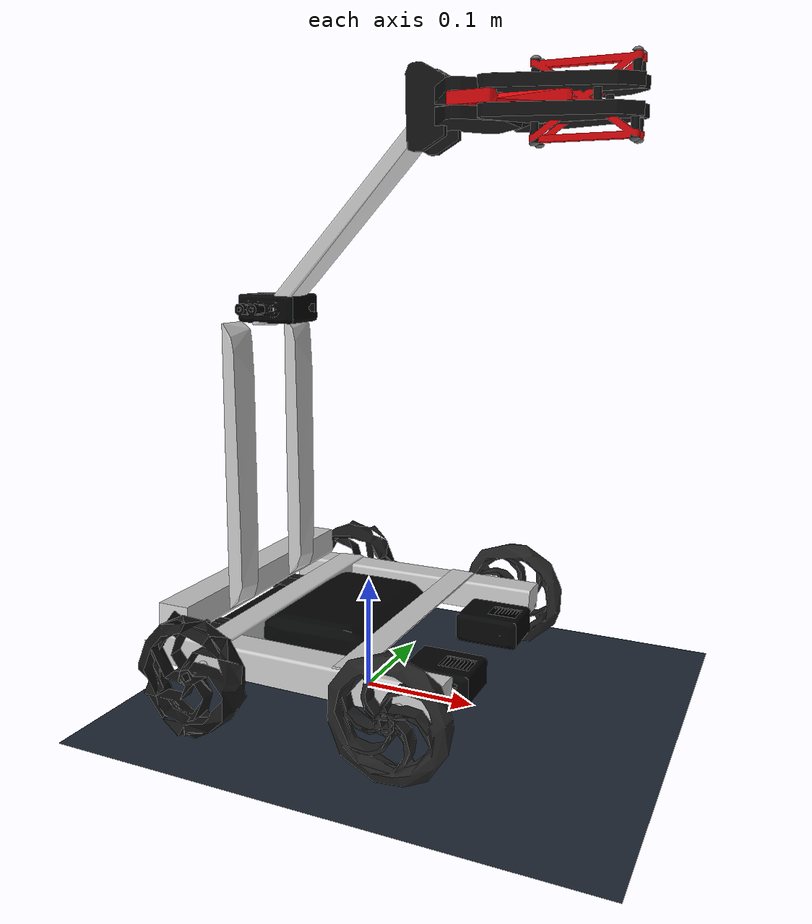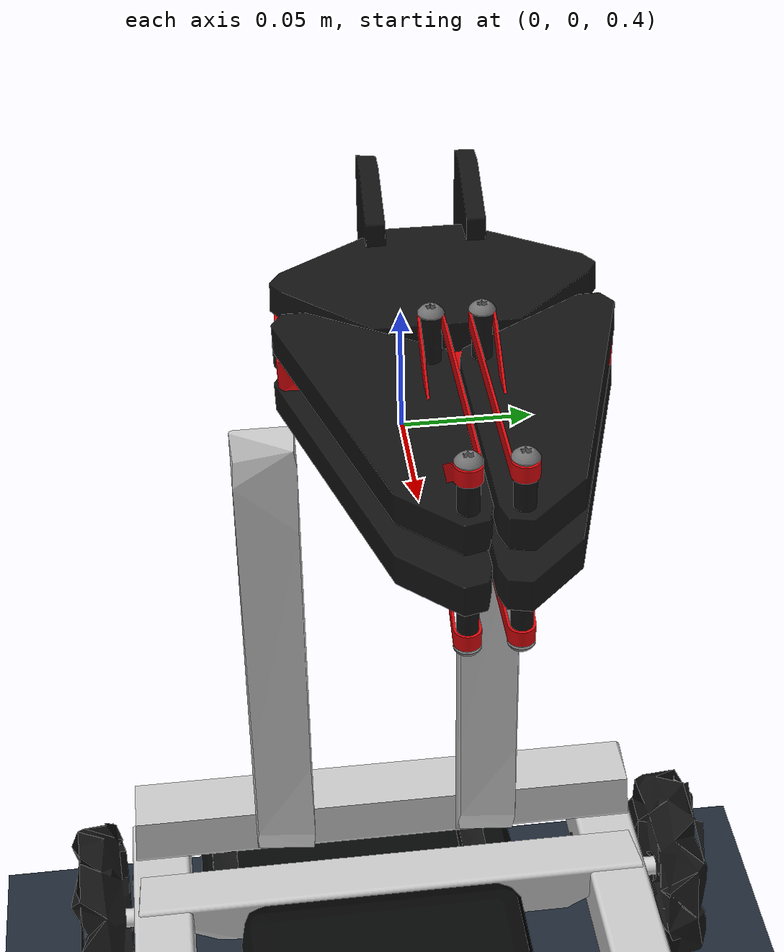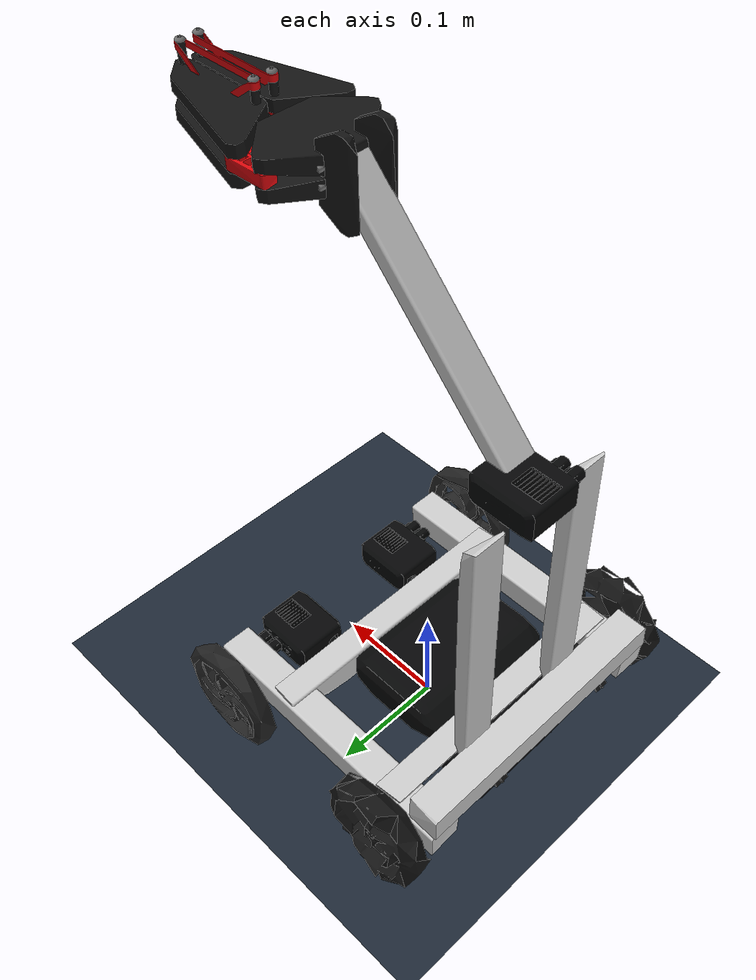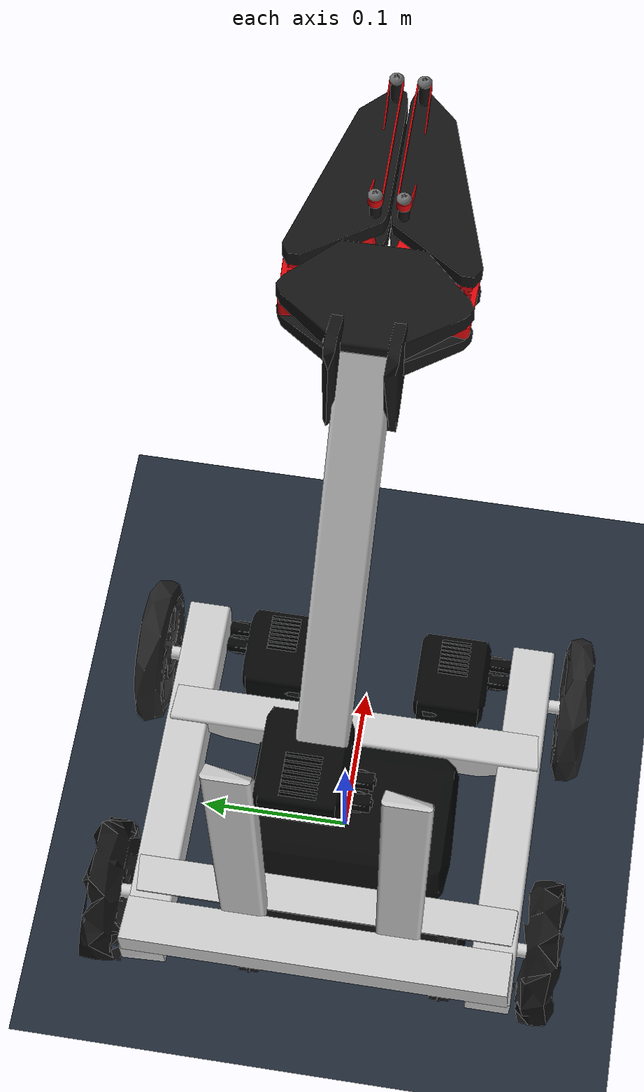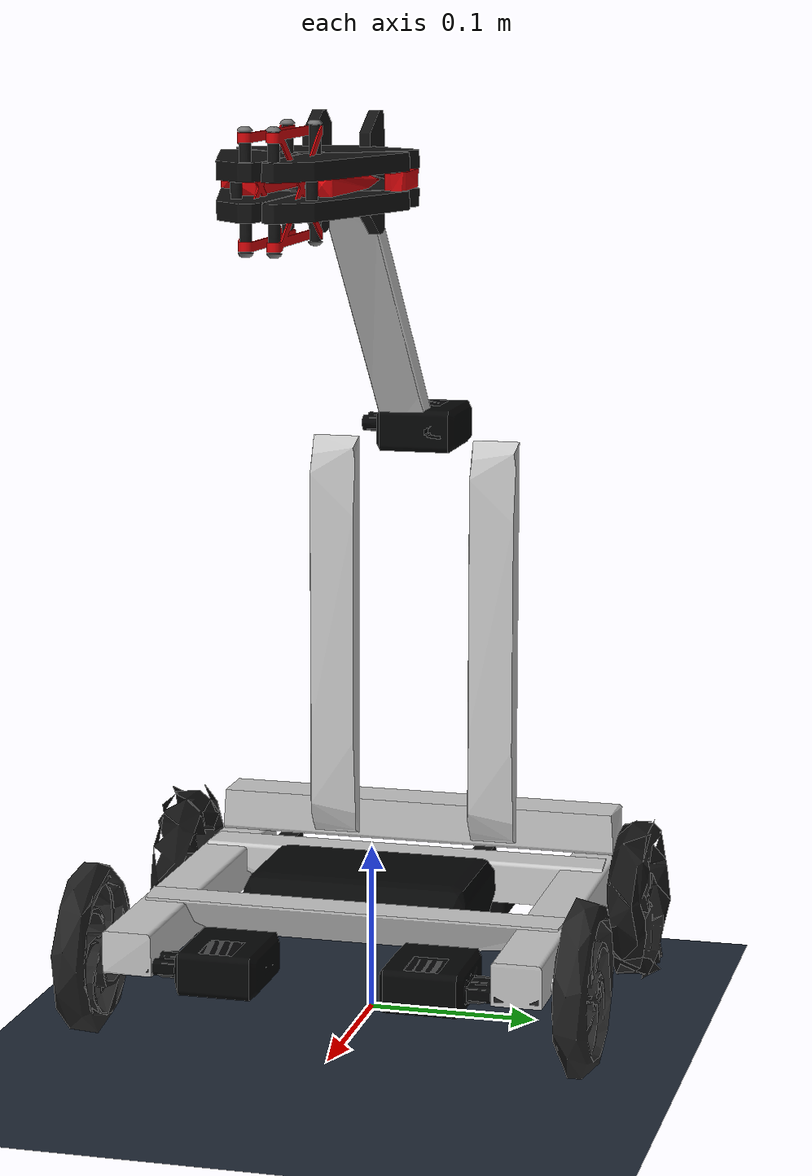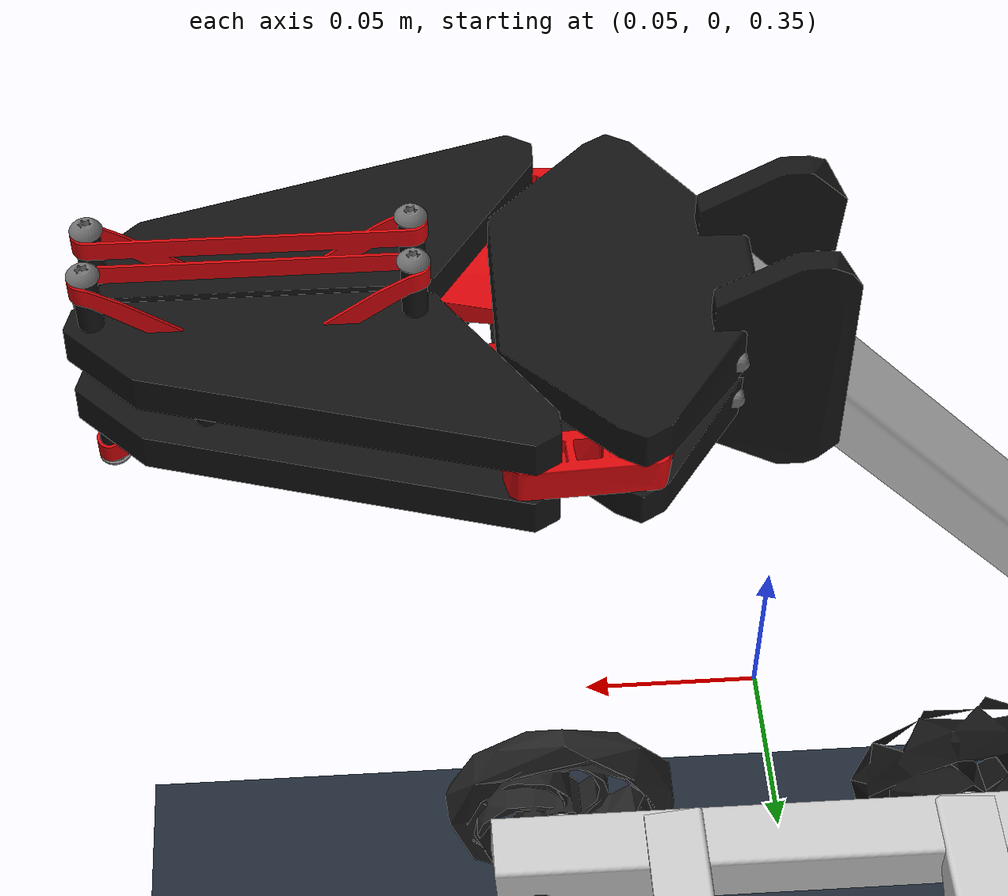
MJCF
<mujoco model="static_concept_NOT_physics_ready"><compiler angle="radian" autolimits="true" /><option gravity="0 0 -9.81" timestep=".002" integrator="implicitfast" iterations="80" /><visual><global offwidth="1200" offheight="900" /><headlight ambient=".4 .4 .4" diffuse=".65 .65 .65" /></visual><asset><mesh name="concept_p00002" file="/Users/joshuamichealscarano/Documents/AI-Vex-Project-1:5:26/data/cad_assets/clawbot/parts/p00002_lod.obj" scale=".001 .001 .001" inertia="shell" /><mesh name="concept_p00003" file="/Users/joshuamichealscarano/Documents/AI-Vex-Project-1:5:26/data/cad_assets/clawbot/parts/p00003_lod.obj" scale=".001 .001 .001" inertia="shell" /><mesh name="concept_p00004" file="/Users/joshuamichealscarano/Documents/AI-Vex-Project-1:5:26/data/cad_assets/clawbot/parts/p00004_lod.obj" scale=".001 .001 .001" inertia="shell" /><mesh name="concept_p00005" file="/Users/joshuamichealscarano/Documents/AI-Vex-Project-1:5:26/data/cad_assets/clawbot/parts/p00005_lod.obj" scale=".001 .001 .001" inertia="shell" /><mesh name="concept_p00006" file="/Users/joshuamichealscarano/Documents/AI-Vex-Project-1:5:26/data/cad_assets/clawbot/parts/p00006_lod.obj" scale=".001 .001 .001" inertia="shell" /><mesh name="concept_p00007" file="/Users/joshuamichealscarano/Documents/AI-Vex-Project-1:5:26/data/cad_assets/clawbot/parts/p00007_lod.obj" scale=".001 .001 .001" inertia="shell" /><mesh name="concept_p00008" file="/Users/joshuamichealscarano/Documents/AI-Vex-Project-1:5:26/data/cad_assets/clawbot/parts/p00008_lod.obj" scale=".001 .001 .001" inertia="shell" /><mesh name="concept_p00009" file="/Users/joshuamichealscarano/Documents/AI-Vex-Project-1:5:26/data/cad_assets/clawbot/parts/p00009_lod.obj" scale=".001 .001 .001" inertia="shell" /><mesh name="concept_p00010" file="/Users/joshuamichealscarano/Documents/AI-Vex-Project-1:5:26/data/cad_assets/clawbot/parts/p00010_lod.obj" scale=".001 .001 .001" inertia="shell" /><mesh name="concept_p00011" file="/Users/joshuamichealscarano/Documents/AI-Vex-Project-1:5:26/data/cad_assets/clawbot/parts/p00011_lod.obj" scale=".001 .001 .001" inertia="shell" /><mesh name="concept_p00012" file="/Users/joshuamichealscarano/Documents/AI-Vex-Project-1:5:26/data/cad_assets/clawbot/parts/p00012_lod.obj" scale=".001 .001 .001" inertia="shell" /><mesh name="concept_p00019" file="/Users/joshuamichealscarano/Documents/AI-Vex-Project-1:5:26/data/cad_assets/clawbot/parts/p00019_lod.obj" scale=".001 .001 .001" inertia="shell" /><mesh name="concept_p00025" file="/Users/joshuamichealscarano/Documents/AI-Vex-Project-1:5:26/data/cad_assets/clawbot/parts/p00025_lod.obj" scale=".001 .001 .001" inertia="shell" /><mesh name="concept_p00026" file="/Users/joshuamichealscarano/Documents/AI-Vex-Project-1:5:26/data/cad_assets/clawbot/parts/p00026_lod.obj" scale=".001 .001 .001" inertia="shell" /><mesh name="concept_p00027" file="/Users/joshuamichealscarano/Documents/AI-Vex-Project-1:5:26/data/cad_assets/clawbot/parts/p00027_lod.obj" scale=".001 .001 .001" inertia="shell" /><mesh name="concept_p00028" file="/Users/joshuamichealscarano/Documents/AI-Vex-Project-1:5:26/data/cad_assets/clawbot/parts/p00028_lod.obj" scale=".001 .001 .001" inertia="shell" /><mesh name="concept_p00029" file="/Users/joshuamichealscarano/Documents/AI-Vex-Project-1:5:26/data/cad_assets/clawbot/parts/p00029_lod.obj" scale=".001 .001 .001" inertia="shell" /><mesh name="concept_p00030" file="/Users/joshuamichealscarano/Documents/AI-Vex-Project-1:5:26/data/cad_assets/clawbot/parts/p00030_lod.obj" scale=".001 .001 .001" inertia="shell" /><mesh name="concept_p00031" file="/Users/joshuamichealscarano/Documents/AI-Vex-Project-1:5:26/data/cad_assets/clawbot/parts/p00031_lod.obj" scale=".001 .001 .001" inertia="shell" /><mesh name="concept_p00032" file="/Users/joshuamichealscarano/Documents/AI-Vex-Project-1:5:26/data/cad_assets/clawbot/parts/p00032_lod.obj" scale=".001 .001 .001" inertia="shell" /><mesh name="concept_p00033" file="/Users/joshuamichealscarano/Documents/AI-Vex-Project-1:5:26/data/cad_assets/clawbot/parts/p00033_lod.obj" scale=".001 .001 .001" inertia="shell" /><mesh name="concept_p00034" file="/Users/joshuamichealscarano/Documents/AI-Vex-Project-1:5:26/data/cad_assets/clawbot/parts/p00034_lod.obj" scale=".001 .001 .001" inertia="shell" /><mesh name="concept_p00035" file="/Users/joshuamichealscarano/Documents/AI-Vex-Project-1:5:26/data/cad_assets/clawbot/parts/p00035_lod.obj" scale=".001 .001 .001" inertia="shell" /><mesh name="concept_p00036" file="/Users/joshuamichealscarano/Documents/AI-Vex-Project-1:5:26/data/cad_assets/clawbot/parts/p00036_lod.obj" scale=".001 .001 .001" inertia="shell" /><mesh name="concept_p00037" file="/Users/joshuamichealscarano/Documents/AI-Vex-Project-1:5:26/data/cad_assets/clawbot/parts/p00037_lod.obj" scale=".001 .001 .001" inertia="shell" /><mesh name="concept_p00038" file="/Users/joshuamichealscarano/Documents/AI-Vex-Project-1:5:26/data/cad_assets/clawbot/parts/p00038_lod.obj" scale=".001 .001 .001" inertia="shell" /><mesh name="concept_p00039" file="/Users/joshuamichealscarano/Documents/AI-Vex-Project-1:5:26/data/cad_assets/clawbot/parts/p00039_lod.obj" scale=".001 .001 .001" inertia="shell" /><mesh name="concept_p00040" file="/Users/joshuamichealscarano/Documents/AI-Vex-Project-1:5:26/data/cad_assets/clawbot/parts/p00040_lod.obj" scale=".001 .001 .001" inertia="shell" /><mesh name="concept_p00041" file="/Users/joshuamichealscarano/Documents/AI-Vex-Project-1:5:26/data/cad_assets/clawbot/parts/p00041_lod.obj" scale=".001 .001 .001" inertia="shell" /><mesh name="concept_p00042" file="/Users/joshuamichealscarano/Documents/AI-Vex-Project-1:5:26/data/cad_assets/clawbot/parts/p00042_lod.obj" scale=".001 .001 .001" inertia="shell" /><mesh name="concept_p00043" file="/Users/joshuamichealscarano/Documents/AI-Vex-Project-1:5:26/data/cad_assets/clawbot/parts/p00043_lod.obj" scale=".001 .001 .001" inertia="shell" /><mesh name="concept_p00044" file="/Users/joshuamichealscarano/Documents/AI-Vex-Project-1:5:26/data/cad_assets/clawbot/parts/p00044_lod.obj" scale=".001 .001 .001" inertia="shell" /><mesh name="concept_p00045" file="/Users/joshuamichealscarano/Documents/AI-Vex-Project-1:5:26/data/cad_assets/clawbot/parts/p00045_lod.obj" scale=".001 .001 .001" inertia="shell" /><mesh name="concept_p00046" file="/Users/joshuamichealscarano/Documents/AI-Vex-Project-1:5:26/data/cad_assets/clawbot/parts/p00046_lod.obj" scale=".001 .001 .001" inertia="shell" /><mesh name="concept_p00047" file="/Users/joshuamichealscarano/Documents/AI-Vex-Project-1:5:26/data/cad_assets/clawbot/parts/p00047_lod.obj" scale=".001 .001 .001" inertia="shell" /><mesh name="concept_p00048" file="/Users/joshuamichealscarano/Documents/AI-Vex-Project-1:5:26/data/cad_assets/clawbot/parts/p00048_lod.obj" scale=".001 .001 .001" inertia="shell" /><mesh name="concept_p00049" file="/Users/joshuamichealscarano/Documents/AI-Vex-Project-1:5:26/data/cad_assets/clawbot/parts/p00049_lod.obj" scale=".001 .001 .001" inertia="shell" /><mesh name="concept_p00050" file="/Users/joshuamichealscarano/Documents/AI-Vex-Project-1:5:26/data/cad_assets/clawbot/parts/p00050_lod.obj" scale=".001 .001 .001" inertia="shell" /><mesh name="concept_p00051" file="/Users/joshuamichealscarano/Documents/AI-Vex-Project-1:5:26/data/cad_assets/clawbot/parts/p00051_lod.obj" scale=".001 .001 .001" inertia="shell" /><mesh name="concept_p00052" file="/Users/joshuamichealscarano/Documents/AI-Vex-Project-1:5:26/data/cad_assets/clawbot/parts/p00052_lod.obj" scale=".001 .001 .001" inertia="shell" /><mesh name="concept_p00053" file="/Users/joshuamichealscarano/Documents/AI-Vex-Project-1:5:26/data/cad_assets/clawbot/parts/p00053_lod.obj" scale=".001 .001 .001" inertia="shell" /><mesh name="concept_p00054" file="/Users/joshuamichealscarano/Documents/AI-Vex-Project-1:5:26/data/cad_assets/clawbot/parts/p00054_lod.obj" scale=".001 .001 .001" inertia="shell" /><mesh name="concept_p00055" file="/Users/joshuamichealscarano/Documents/AI-Vex-Project-1:5:26/data/cad_assets/clawbot/parts/p00055_lod.obj" scale=".001 .001 .001" inertia="shell" /><mesh name="concept_p00056" file="/Users/joshuamichealscarano/Documents/AI-Vex-Project-1:5:26/data/cad_assets/clawbot/parts/p00056_lod.obj" scale=".001 .001 .001" inertia="shell" /><mesh name="concept_p00057" file="/Users/joshuamichealscarano/Documents/AI-Vex-Project-1:5:26/data/cad_assets/clawbot/parts/p00057_lod.obj" scale=".001 .001 .001" inertia="shell" /><mesh name="concept_p00058" file="/Users/joshuamichealscarano/Documents/AI-Vex-Project-1:5:26/data/cad_assets/clawbot/parts/p00058_lod.obj" scale=".001 .001 .001" inertia="shell" /><mesh name="concept_p00059" file="/Users/joshuamichealscarano/Documents/AI-Vex-Project-1:5:26/data/cad_assets/clawbot/parts/p00059_lod.obj" scale=".001 .001 .001" inertia="shell" /><mesh name="concept_p00060" file="/Users/joshuamichealscarano/Documents/AI-Vex-Project-1:5:26/data/cad_assets/clawbot/parts/p00060_lod.obj" scale=".001 .001 .001" inertia="shell" /><mesh name="concept_p00061" file="/Users/joshuamichealscarano/Documents/AI-Vex-Project-1:5:26/data/cad_assets/clawbot/parts/p00061_lod.obj" scale=".001 .001 .001" inertia="shell" /><mesh name="concept_p00062" file="/Users/joshuamichealscarano/Documents/AI-Vex-Project-1:5:26/data/cad_assets/clawbot/parts/p00062_lod.obj" scale=".001 .001 .001" inertia="shell" /><mesh name="concept_p00063" file="/Users/joshuamichealscarano/Documents/AI-Vex-Project-1:5:26/data/cad_assets/clawbot/parts/p00063_lod.obj" scale=".001 .001 .001" inertia="shell" /><mesh name="concept_p00064" file="/Users/joshuamichealscarano/Documents/AI-Vex-Project-1:5:26/data/cad_assets/clawbot/parts/p00064_lod.obj" scale=".001 .001 .001" inertia="shell" /><mesh name="concept_p00065" file="/Users/joshuamichealscarano/Documents/AI-Vex-Project-1:5:26/data/cad_assets/clawbot/parts/p00065_lod.obj" scale=".001 .001 .001" inertia="shell" /><mesh name="concept_p00066" file="/Users/joshuamichealscarano/Documents/AI-Vex-Project-1:5:26/data/cad_assets/clawbot/parts/p00066_lod.obj" scale=".001 .001 .001" inertia="shell" /><mesh name="concept_p00067" file="/Users/joshuamichealscarano/Documents/AI-Vex-Project-1:5:26/data/cad_assets/clawbot/parts/p00067_lod.obj" scale=".001 .001 .001" inertia="shell" /><mesh name="concept_p00068" file="/Users/joshuamichealscarano/Documents/AI-Vex-Project-1:5:26/data/cad_assets/clawbot/parts/p00068_lod.obj" scale=".001 .001 .001" inertia="shell" /></asset><worldbody><light pos="0 0 5" dir="0 0 -1" /><geom type="plane" size="2 2 .1" rgba=".12 .16 .21 1" /><geom name="concept_i00000" type="mesh" mesh="concept_p00002" pos="0.09847540173296034 0.060476939280389594 0.05307428532526439" quat="3.334775382891007e-17 1.7181433922416647e-15 2.6074219964273e-15 1.0" contype="0" conaffinity="0" mass="0" group="1" rgba="0.01850022003054619 0.021219009533524513 0.023153366521000862 1" /><geom name="concept_i00001" type="mesh" mesh="concept_p00003" pos="0.10162536980693931 0.12745193928039053 0.05307432210640686" quat="0.5000000000000012 -0.4999999999999988 -0.49999999999999956 0.5000000000000004" contype="0" conaffinity="0" mass="0" group="1" rgba="0.13286831974983215 0.13286831974983215 0.13286831974983215 1" /><geom name="concept_i00002" type="mesh" mesh="concept_p00004" pos="0.08892536492067532 0.1369894392803905 0.05307431381385745" quat="0.7013456129747524 0.7013456129747518 -0.09007958237619262 0.09007958237619197" contype="0" conaffinity="0" mass="0" group="1" rgba="0.8227857351303101 0.8227857351303101 0.8227857351303101 1" /><geom name="concept_i00003" type="mesh" mesh="concept_p00005" pos="-0.06870690124986707 0.1207019392803905 0.06788219626833665" quat="-7.997658461420492e-16 -0.7071067811865475 7.997658461420492e-16 0.7071067811865476" contype="0" conaffinity="0" mass="0" group="1" rgba="0.7912979125976562 0.7912979125976562 0.7912979125976562 1" /><geom name="concept_i00004" type="mesh" mesh="concept_p00004" pos="-0.0889253012498671 0.13063943928039048 0.053124996268336604" quat="-0.28744373618483376 0.28744373618483204 0.6460465142140333 0.646046514214035" contype="0" conaffinity="0" mass="0" group="1" rgba="0.8227857351303101 0.8227857351303101 0.8227857351303101 1" /><geom name="concept_i00005" type="mesh" mesh="concept_p00006" pos="-0.10801850626531498 0.10192317611757651 0.05308082182278137" quat="0.6977307193850331 0.7162406181305105 -0.009372891440620847 -0.009130666597286166" contype="0" conaffinity="0" mass="0" group="1" rgba="0.07421357184648514 0.07421357184648514 0.07421357184648514 1" /><geom name="concept_i00006" type="mesh" mesh="concept_p00004" pos="-0.08892530124986721 -0.13053556071960953 0.053124996268337166" quat="-0.18023609565446094 -0.18023609565445992 -0.6837506488649452 0.6837506488649491" contype="0" conaffinity="0" mass="0" group="1" rgba="0.8227857351303101 0.8227857351303101 0.8227857351303101 1" /><geom name="concept_i00007" type="mesh" mesh="concept_p00007" pos="-0.12087530124986669 5.1939280390665755e-05 0.0753749962683372" quat="-5.132757762306371e-16 0.7071067811865476 0.7071067811865475 -1.916545911179263e-15" contype="0" conaffinity="0" mass="0" group="1" rgba="0.7912979125976562 0.7912979125976562 0.7912979125976562 1" /><geom name="concept_i00008" type="mesh" mesh="concept_p00008" pos="-0.10132530124986698 -0.0824980607196095 0.06477499626833727" quat="-1.718143392241685e-15 1.5956287909886566e-30 1.0 -1.269817584415025e-15" contype="0" conaffinity="0" mass="0" group="1" rgba="0.07421357184648514 0.07421357184648514 0.07421357184648514 1" /><geom name="concept_i00009" type="mesh" mesh="concept_p00009" pos="-0.10117474815398257 -0.0145180737735457 0.05702499626833699" quat="2.069509665702966e-15 0.7071067811865476 -0.7071067811865475 -2.7371641608338823e-16" contype="0" conaffinity="0" mass="0" group="1" rgba="0.01850022003054619 0.021219009533524513 0.023153366521000862 1" /><geom name="concept_i00010" type="mesh" mesh="concept_p00010" pos="0.08892519494084633 -0.1466410808753605 0.05307425157339762" quat="-2.0293389754430299e-16 -0.08802630327534827 2.9172759690976574e-15 0.996118150588411" contype="0" conaffinity="0" mass="0" group="1" rgba="0.13286831974983215 0.13286831974983215 0.13286831974983215 1" /><geom name="concept_i00011" type="mesh" mesh="concept_p00003" pos="0.10162536980694731 -0.10154806071960949 0.05307432506640584" quat="0.4999999999999989 0.5000000000000011 0.5000000000000006 0.49999999999999956" contype="0" conaffinity="0" mass="0" group="1" rgba="0.13286831974983215 0.13286831974983215 0.13286831974983215 1" /><geom name="concept_i00012" type="mesh" mesh="concept_p00011" pos="-0.01879590124986668 -0.00629806071960919 0.06605827777833696" quat="0.7071067811865476 -7.212612232078573e-16 -7.212612232078573e-16 -0.7071067811865475" contype="0" conaffinity="0" mass="0" group="1" rgba="0.01850022003054619 0.021219009533524513 0.023153366521000862 1" /><geom name="concept_i00013" type="mesh" mesh="concept_p00012" pos="-0.0889252496749306 -0.13847306071960952 0.05312572590331531" quat="0.5035145532104867 -1.468045305130825e-15 -0.8639867445194076 2.466127429910771e-15" contype="0" conaffinity="0" mass="0" group="1" rgba="0.07421357184648514 0.07421357184648514 0.07421357184648514 1" /><geom name="concept_i00014" type="mesh" mesh="concept_p00004" pos="0.0889253665457943 -0.13053556071960953 0.05307433498407808" quat="0.5420722269318813 0.542072226931878 0.45404592365653007 -0.45404592365653285" contype="0" conaffinity="0" mass="0" group="1" rgba="0.8227857351303101 0.8227857351303101 0.8227857351303101 1" /><geom name="concept_i00015" type="mesh" mesh="concept_p00008" pos="-0.10132530124986698 0.0445019392803905 0.06477499626833702" quat="-1.718143392241685e-15 1.5956287909886566e-30 1.0 -1.269817584415025e-15" contype="0" conaffinity="0" mass="0" group="1" rgba="0.07421357184648514 0.07421357184648514 0.07421357184648514 1" /><geom name="concept_i00016" type="mesh" mesh="concept_p00006" pos="-0.10797530124986718 -0.12744361319812347 0.05312499626833723" quat="0.7071067811865496 0.7071067811865455 1.3130416223726868e-15 -1.1167800650372129e-15" contype="0" conaffinity="0" mass="0" group="1" rgba="0.07421357184648514 0.07421357184648514 0.07421357184648514 1" /><geom name="concept_i00017" type="mesh" mesh="concept_p00007" pos="-0.00637530124986668 -0.1144480607196095 0.07217499626833701" quat="1.0 -1.13103970633688e-15 1.71814339224168e-15 -1.9393863700789842e-30" contype="0" conaffinity="0" mass="0" group="1" rgba="0.7912979125976562 0.7912979125976562 0.7912979125976562 1" /><geom name="concept_i00018" type="mesh" mesh="concept_p00002" pos="0.09847540988038332 -0.060373060719609496 0.05307437324521969" quat="-1.71814339224168e-15 3.3347753828916424e-17 1.0 6.22898339909835e-16" contype="0" conaffinity="0" mass="0" group="1" rgba="0.01850022003054619 0.021219009533524513 0.023153366521000862 1" /><geom name="concept_i00019" type="mesh" mesh="concept_p00006" pos="-0.10801850626531498 0.1275147638811005 0.05308082182278132" quat="0.6977307193850312 -0.7162406181305124 -0.009372891440620808 0.009130666597286133" contype="0" conaffinity="0" mass="0" group="1" rgba="0.07421357184648514 0.07421357184648514 0.07421357184648514 1" /><geom name="concept_i00020" type="mesh" mesh="concept_p00007" pos="-0.00637530124986668 0.1145519392803905 0.07217499626833655" quat="2.1549983523702357e-30 1.71814339224168e-15 9.92261828258735e-16 1.0" contype="0" conaffinity="0" mass="0" group="1" rgba="0.7912979125976562 0.7912979125976562 0.7912979125976562 1" /><geom name="concept_i00021" type="mesh" mesh="concept_p00012" pos="-0.08892511942486203 0.1385769392803905 0.05312570476452072" quat="-1.2006286119007665e-15 0.9334902503988669 -2.8411825133624137e-16 0.3586027780292016" contype="0" conaffinity="0" mass="0" group="1" rgba="0.07421357184648514 0.07421357184648514 0.07421357184648514 1" /><geom name="concept_i00022" type="mesh" mesh="concept_p00003" pos="0.10162537143205631 -0.12734806071960952 0.05307432669152851" quat="0.5000000000000022 0.4999999999999978 -0.5000000000000007 -0.49999999999999944" contype="0" conaffinity="0" mass="0" group="1" rgba="0.13286831974983215 0.13286831974983215 0.13286831974983215 1" /><geom name="concept_i00023" type="mesh" mesh="concept_p00005" pos="0.030556298750133323 -0.12059806071960949 0.06788219626833676" quat="0.7071067811865451 -9.224293194767208e-16 0.7071067811865499 -8.733639301428571e-16" contype="0" conaffinity="0" mass="0" group="1" rgba="0.7912979125976562 0.7912979125976562 0.7912979125976562 1" /><geom name="concept_i00024" type="mesh" mesh="concept_p00010" pos="0.08892517415894634 0.14653720231457948 0.053074317758766365" quat="0.12739176708931557 2.5817599716928946e-16 0.9918524777797663 1.5884217907341772e-15" contype="0" conaffinity="0" mass="0" group="1" rgba="0.13286831974983215 0.13286831974983215 0.13286831974983215 1" /><geom name="concept_i00025" type="mesh" mesh="concept_p00003" pos="0.10162537143205631 0.1016519392803905 0.05307432669152795" quat="0.5000000000000021 0.49999999999999784 -0.5000000000000004 -0.49999999999999956" contype="0" conaffinity="0" mass="0" group="1" rgba="0.13286831974983215 0.13286831974983215 0.13286831974983215 1" /><geom name="concept_new0026" type="mesh" mesh="concept_p00019" pos="-0.10555000000000016 -0.050800000000000144 0.205" quat="0.7071067811865476 0.0 -0.7071067811865475 0.0" contype="0" conaffinity="0" mass="0" group="1" rgba="0.7912979125976562 0.7912979125976562 0.7912979125976562 1" /><geom name="concept_new0027" type="mesh" mesh="concept_p00019" pos="-0.10555000000000016 0.050799999999999845 0.205" quat="0.7071067811865476 0.0 -0.7071067811865475 0.0" contype="0" conaffinity="0" mass="0" group="1" rgba="0.7912979125976562 0.7912979125976562 0.7912979125976562 1" /><geom name="concept_new0028" type="mesh" mesh="concept_p00019" pos="-0.021775910902446065 -1.4921397450962105e-16 0.42102291499869987" quat="0.917060074385124 0.0 -0.3987490689252462 0.0" contype="0" conaffinity="0" mass="0" group="1" rgba="0.7912979125976562 0.7912979125976562 0.7912979125976562 1" /><geom name="concept_new0029" type="mesh" mesh="concept_p00002" pos="-0.0950000351871734 0.007912500000000001 0.34199996011373573" quat="1.0 0.0 0.0 0.0" contype="0" conaffinity="0" mass="0" group="1" rgba="0.01850022003054619 0.021219009533524513 0.023153366521000862 1" /><geom name="concept_claw_i00060" type="mesh" mesh="concept_p00025" pos="0.12155446918145592 0.007701376443318853 0.5052788723645601" quat="0.698989866993021 1.5555223009113494e-15 3.3482038843785195e-15 0.7151315723984495" contype="0" conaffinity="0" mass="0" group="1" rgba="0.07421357184648514 0.07421357184648514 0.07421357184648514 1" /><geom name="concept_claw_i00061" type="mesh" mesh="concept_p00026" pos="0.12122828991449293 4.4839274998854426e-05 0.5052788723642185" quat="0.7071067811865476 0.0 0.0 0.7071067811865475" contype="0" conaffinity="0" mass="0" group="1" rgba="0.07421357184648514 0.07421357184648514 0.07421357184648514 1" /><geom name="concept_claw_i00062" type="mesh" mesh="concept_p00027" pos="0.09582828991449295 -0.044405160725001044 0.5178282723642188" quat="0.7071067811865476 0.0 0.0 0.7071067811865475" contype="0" conaffinity="0" mass="0" group="1" rgba="0.4507857859134674 0.4507857859134674 0.4507857859134674 1" /><geom name="concept_claw_i00063" type="mesh" mesh="concept_p00028" pos="0.1215544570043589 -0.007611689937603897 0.5052788720538725" quat="0.7151316503145081 1.5188634695943052e-15 3.370584118287751e-15 0.6989897872776456" contype="0" conaffinity="0" mass="0" group="1" rgba="0.07421357184648514 0.07421357184648514 0.07421357184648514 1" /><geom name="concept_claw_i00064" type="mesh" mesh="concept_p00029" pos="0.12122828991449293 4.4839274998854426e-05 0.5052788723642185" quat="0.7071067811865476 0.0 0.0 0.7071067811865475" contype="0" conaffinity="0" mass="0" group="1" rgba="0.07421357184648514 0.07421357184648514 0.07421357184648514 1" /><geom name="concept_claw_i00065" type="mesh" mesh="concept_p00030" pos="0.12155446918145592 0.007701376443318853 0.5052788723645601" quat="0.698989866993021 1.5555223009113494e-15 3.3482038843785195e-15 0.7151315723984495" contype="0" conaffinity="0" mass="0" group="1" rgba="0.8549926280975342 0.026241222396492958 0.0423114113509655 1" /><geom name="concept_claw_i00066" type="mesh" mesh="concept_p00031" pos="0.12122828991449293 4.4839274998854426e-05 0.5052788723642185" quat="0.7071067811865476 0.0 0.0 0.7071067811865475" contype="0" conaffinity="0" mass="0" group="1" rgba="0.07421357184648514 0.07421357184648514 0.07421357184648514 1" /><geom name="concept_claw_i00067" type="mesh" mesh="concept_p00032" pos="0.12155446918145592 0.007701376443318853 0.5052788723645601" quat="0.698989866993021 1.5555223009113494e-15 3.3482038843785195e-15 0.7151315723984495" contype="0" conaffinity="0" mass="0" group="1" rgba="0.07421357184648514 0.07421357184648514 0.07421357184648514 1" /><geom name="concept_claw_i00068" type="mesh" mesh="concept_p00027" pos="0.22282090871357194 -0.007506249847886556 0.49730577236455953" quat="0.1192014278661067 3.288410098849309e-15 1.6890064428634338e-15 0.9928700920033201" contype="0" conaffinity="0" mass="0" group="1" rgba="0.4507857859134674 0.4507857859134674 0.4507857859134674 1" /><geom name="concept_claw_i00069" type="mesh" mesh="concept_p00033" pos="0.12155446918145592 0.007701376443318853 0.5052788723645601" quat="0.698989866993021 1.5555223009113494e-15 3.3482038843785195e-15 0.7151315723984495" contype="0" conaffinity="0" mass="0" group="1" rgba="0.07421357184648514 0.07421357184648514 0.07421357184648514 1" /><geom name="concept_claw_i00070" type="mesh" mesh="concept_p00027" pos="0.12122828991449293 0.019094839274998953 0.5178282723642185" quat="0.7071067811865464 -3.37265511053044e-15 1.5768618609108681e-15 -0.7071067811865487" contype="0" conaffinity="0" mass="0" group="1" rgba="0.4507857859134674 0.4507857859134674 0.4507857859134674 1" /><geom name="concept_claw_i00071" type="mesh" mesh="concept_p00027" pos="0.12120218798611498 0.045645977949540756 0.5178257720538723" quat="0.7151316503145083 1.5190034649327305e-15 3.370014665929591e-15 0.6989897872776454" contype="0" conaffinity="0" mass="0" group="1" rgba="0.4507857859134674 0.4507857859134674 0.4507857859134674 1" /><geom name="concept_claw_i00072" type="mesh" mesh="concept_p00027" pos="0.07042828991449292 0.016594239274999055 0.49892887236421896" quat="-0.499999999999998 -0.49999999999999845 -0.5000000000000003 0.5000000000000032" contype="0" conaffinity="0" mass="0" group="1" rgba="0.4507857859134674 0.4507857859134674 0.4507857859134674 1" /><geom name="concept_claw_i00073" type="mesh" mesh="concept_p00034" pos="0.10656497288456192 0.005651662395425753 0.5052848729859346" quat="0.5903314376006672 3.6651133308258243e-16 5.416079400762864e-15 0.8071609466397205" contype="0" conaffinity="0" mass="0" group="1" rgba="0.8549926280975342 0.026241222396492958 0.0423114113509655 1" /><geom name="concept_claw_i00074" type="mesh" mesh="concept_p00035" pos="0.12122828991449293 4.4839274998854426e-05 0.5052788723642185" quat="0.7071067811865476 0.0 0.0 0.7071067811865475" contype="0" conaffinity="0" mass="0" group="1" rgba="0.07421357184648514 0.07421357184648514 0.07421357184648514 1" /><geom name="concept_claw_i00075" type="mesh" mesh="concept_p00036" pos="0.12155446918145592 0.007701376443318853 0.5052788723645601" quat="0.698989866993021 1.5555223009113494e-15 3.3482038843785195e-15 0.7151315723984495" contype="0" conaffinity="0" mass="0" group="1" rgba="0.07421357184648514 0.07421357184648514 0.07421357184648514 1" /><geom name="concept_claw_i00076" type="mesh" mesh="concept_p00037" pos="0.12155446918145592 0.007701376443318853 0.5052788723645601" quat="0.698989866993021 1.5555223009113494e-15 3.3482038843785195e-15 0.7151315723984495" contype="0" conaffinity="0" mass="0" group="1" rgba="0.07421357184648514 0.07421357184648514 0.07421357184648514 1" /><geom name="concept_claw_i00077" type="mesh" mesh="concept_p00038" pos="0.1215544570043589 -0.007611689937603897 0.5052788720538725" quat="0.7151316503145081 1.5188634695943052e-15 3.370584118287751e-15 0.6989897872776456" contype="0" conaffinity="0" mass="0" group="1" rgba="0.07421357184648514 0.07421357184648514 0.07421357184648514 1" /><geom name="concept_claw_i00078" type="mesh" mesh="concept_p00039" pos="0.07042828991449292 -0.014955160725000947 0.5116288723642188" quat="0.5000000000000031 0.5000000000000003 -0.49999999999999856 0.4999999999999981" contype="0" conaffinity="0" mass="0" group="1" rgba="0.4507857859134674 0.4507857859134674 0.4507857859134674 1" /><geom name="concept_claw_i00079" type="mesh" mesh="concept_p00027" pos="0.1466209179239179 -0.007468784439818537 0.5132519723645599" quat="0.9898904637511728 -7.72970473634432e-16 3.607653848650746e-15 0.14183395141674648" contype="0" conaffinity="0" mass="0" group="1" rgba="0.4507857859134674 0.4507857859134674 0.4507857859134674 1" /><geom name="concept_claw_i00080" type="mesh" mesh="concept_p00027" pos="0.19741466159082594 0.02028342943698795 0.5178257720538718" quat="0.999934857942681 -1.2664020639653226e-15 3.4416511913931895e-15 -0.011414020814351031" contype="0" conaffinity="0" mass="0" group="1" rgba="0.4507857859134674 0.4507857859134674 0.4507857859134674 1" /><geom name="concept_claw_i00081" type="mesh" mesh="concept_p00040" pos="0.12155446918145592 0.007701376443318853 0.5052788723645601" quat="0.698989866993021 1.5555223009113494e-15 3.3482038843785195e-15 0.7151315723984495" contype="0" conaffinity="0" mass="0" group="1" rgba="0.07421357184648514 0.07421357184648514 0.07421357184648514 1" /><geom name="concept_claw_i00082" type="mesh" mesh="concept_p00041" pos="0.1215544570043589 -0.007611689937603897 0.5052788720538725" quat="0.7151316503145081 1.5188634695943052e-15 3.370584118287751e-15 0.6989897872776456" contype="0" conaffinity="0" mass="0" group="1" rgba="0.07421357184648514 0.07421357184648514 0.07421357184648514 1" /><geom name="concept_claw_i00083" type="mesh" mesh="concept_p00042" pos="0.12155446918145592 0.007701376443318853 0.5052788723645601" quat="0.698989866993021 1.5555223009113494e-15 3.3482038843785195e-15 0.7151315723984495" contype="0" conaffinity="0" mass="0" group="1" rgba="0.07421357184648514 0.07421357184648514 0.07421357184648514 1" /><geom name="concept_claw_i00084" type="mesh" mesh="concept_p00043" pos="0.12155446918145592 0.007701376443318853 0.5052788723645601" quat="0.698989866993021 1.5555223009113494e-15 3.3482038843785195e-15 0.7151315723984495" contype="0" conaffinity="0" mass="0" group="1" rgba="0.07421357184648514 0.07421357184648514 0.07421357184648514 1" /><geom name="concept_claw_i00085" type="mesh" mesh="concept_p00044" pos="0.11792029212994995 -0.00024457640759471653 0.5052848732967926" quat="0.642787609686807 1.8278027977793906e-15 3.2034439289854136e-15 0.7660444431187534" contype="0" conaffinity="0" mass="0" group="1" rgba="0.8549926280975342 0.026241222396492958 0.0423114113509655 1" /><geom name="concept_claw_i00086" type="mesh" mesh="concept_p00045" pos="0.14662090912884193 0.007558465357240753 0.47446937205387224" quat="-1.5010125485812838e-15 0.7151316503145082 0.6989897872776455 -3.490966339777256e-15" contype="0" conaffinity="0" mass="0" group="1" rgba="0.4507857859134674 0.4507857859134674 0.4507857859134674 1" /><geom name="concept_claw_i00087" type="mesh" mesh="concept_p00046" pos="0.1215544570043589 -0.007611689937603897 0.5052788720538725" quat="0.7151316503145081 1.5188634695943052e-15 3.370584118287751e-15 0.6989897872776456" contype="0" conaffinity="0" mass="0" group="1" rgba="0.8549926280975342 0.026241222396492958 0.0423114113509655 1" /><geom name="concept_claw_i00088" type="mesh" mesh="concept_p00045" pos="0.12122828991449293 -0.019005160725001146 0.49427887236421864" quat="-1.5572357051773204e-15 0.7071067811865487 0.7071067811865464 -3.3530289547969067e-15" contype="0" conaffinity="0" mass="0" group="1" rgba="0.4507857859134674 0.4507857859134674 0.4507857859134674 1" /><geom name="concept_claw_i00089" type="mesh" mesh="concept_p00027" pos="0.22282090871357194 -0.007506249847886516 0.5132519723645593" quat="0.8002500083996154 -3.0753577644989916e-15 1.987779747808888e-15 -0.5996665107010859" contype="0" conaffinity="0" mass="0" group="1" rgba="0.4507857859134674 0.4507857859134674 0.4507857859134674 1" /><geom name="concept_claw_i00090" type="mesh" mesh="concept_p00045" pos="0.09582828991449295 0.044494839274998955 0.49427887236421864" quat="-1.5572357051773204e-15 0.7071067811865487 0.7071067811865464 -3.3530289547969067e-15" contype="0" conaffinity="0" mass="0" group="1" rgba="0.4507857859134674 0.4507857859134674 0.4507857859134674 1" /><geom name="concept_claw_i00091" type="mesh" mesh="concept_p00045" pos="0.17201466465815693 0.02027094663028265 0.4942813720538722" quat="-1.5376908779883102e-15 0.7151316503145079 0.6989897872776457 -3.38592517366538e-15" contype="0" conaffinity="0" mass="0" group="1" rgba="0.4507857859134674 0.4507857859134674 0.4507857859134674 1" /><geom name="concept_claw_i00092" type="mesh" mesh="concept_p00045" pos="0.12122828991449293 0.019094839274998856 0.4942788723642185" quat="-1.5572357051773204e-15 0.7071067811865487 0.7071067811865464 -3.3530289547969067e-15" contype="0" conaffinity="0" mass="0" group="1" rgba="0.4507857859134674 0.4507857859134674 0.4507857859134674 1" /><geom name="concept_claw_i00093" type="mesh" mesh="concept_p00045" pos="0.22282090871357194 -0.0075062498478826265 0.4744693723645594" quat="-1.6737195868584397e-15 0.6989898669930212 0.7151315723984493 -3.310298196812655e-15" contype="0" conaffinity="0" mass="0" group="1" rgba="0.4507857859134674 0.4507857859134674 0.4507857859134674 1" /><geom name="concept_claw_i00094" type="mesh" mesh="concept_p00047" pos="0.1215544570043589 -0.007611689937603897 0.5052788720538725" quat="0.7151316503145081 1.5188634695943052e-15 3.370584118287751e-15 0.6989897872776456" contype="0" conaffinity="0" mass="0" group="1" rgba="0.07421357184648514 0.07421357184648514 0.07421357184648514 1" /><geom name="concept_claw_i00095" type="mesh" mesh="concept_p00027" pos="0.1212021882899999 -0.04555629136528944 0.5178257723645602" quat="0.6989898669930213 1.6146209438848844e-15 3.3292510405955687e-15 0.7151315723984492" contype="0" conaffinity="0" mass="0" group="1" rgba="0.4507857859134674 0.4507857859134674 0.4507857859134674 1" /><geom name="concept_claw_i00096" type="mesh" mesh="concept_p00045" pos="0.22282089992684595 0.007595913777354853 0.47446937205387174" quat="-1.5186799286084465e-15 0.7151316503145082 0.6989897872776455 -3.4127526511856505e-15" contype="0" conaffinity="0" mass="0" group="1" rgba="0.4507857859134674 0.4507857859134674 0.4507857859134674 1" /><geom name="concept_claw_i00097" type="mesh" mesh="concept_p00048" pos="0.1215544570043589 -0.007611689937603897 0.5052788720538725" quat="0.7151316503145081 1.5188634695943052e-15 3.370584118287751e-15 0.6989897872776456" contype="0" conaffinity="0" mass="0" group="1" rgba="0.07421357184648514 0.07421357184648514 0.07421357184648514 1" /><geom name="concept_claw_i00098" type="mesh" mesh="concept_p00049" pos="0.1215544570043589 -0.007611689937603897 0.5052788720538725" quat="0.7151316503145081 1.5188634695943052e-15 3.370584118287751e-15 0.6989897872776456" contype="0" conaffinity="0" mass="0" group="1" rgba="0.07421357184648514 0.07421357184648514 0.07421357184648514 1" /><geom name="concept_claw_i00099" type="mesh" mesh="concept_p00050" pos="0.12155446918145592 0.007701376443318853 0.5052788723645601" quat="0.698989866993021 1.5555223009113494e-15 3.3482038843785195e-15 0.7151315723984495" contype="0" conaffinity="0" mass="0" group="1" rgba="0.07421357184648514 0.07421357184648514 0.07421357184648514 1" /><geom name="concept_claw_i00100" type="mesh" mesh="concept_p00027" pos="0.17201467061912498 -0.02018127137411675 0.5178257723645598" quat="0.9999348592149901 -1.23986353658222e-15 3.4677748383245717e-15 0.01141390935209368" contype="0" conaffinity="0" mass="0" group="1" rgba="0.4507857859134674 0.4507857859134674 0.4507857859134674 1" /><geom name="concept_claw_i00101" type="mesh" mesh="concept_p00051" pos="0.11792029212994995 0.0003342549575925142 0.5052848732967926" quat="0.7660444431187557 1.2590740818503888e-15 3.475991793799798e-15 0.6427876096868043" contype="0" conaffinity="0" mass="0" group="1" rgba="0.8549926280975342 0.026241222396492958 0.0423114113509655 1" /><geom name="concept_claw_i00102" type="mesh" mesh="concept_p00045" pos="0.19741466159082496 0.02028342943698785 0.494281372053872" quat="-1.5376908779883102e-15 0.7151316503145079 0.6989897872776457 -3.38592517366538e-15" contype="0" conaffinity="0" mass="0" group="1" rgba="0.4507857859134674 0.4507857859134674 0.4507857859134674 1" /><geom name="concept_claw_i00103" type="mesh" mesh="concept_p00027" pos="0.09582828991449295 0.044494839274998955 0.5178282723642186" quat="0.7071067811865476 0.0 0.0 0.7071067811865475" contype="0" conaffinity="0" mass="0" group="1" rgba="0.4507857859134674 0.4507857859134674 0.4507857859134674 1" /><geom name="concept_claw_i00104" type="mesh" mesh="concept_p00045" pos="0.1212021882899999 -0.04555629136528944 0.4942813723645603" quat="-1.5947720554520748e-15 0.6989898669930213 0.7151315723984492 -3.3486519067034707e-15" contype="0" conaffinity="0" mass="0" group="1" rgba="0.4507857859134674 0.4507857859134674 0.4507857859134674 1" /><geom name="concept_claw_i00105" type="mesh" mesh="concept_p00027" pos="0.17201466465815693 0.020270946630282755 0.5178257720538721" quat="0.999934857942681 -1.2664020639653226e-15 3.4416511913931895e-15 -0.011414020814351031" contype="0" conaffinity="0" mass="0" group="1" rgba="0.4507857859134674 0.4507857859134674 0.4507857859134674 1" /><geom name="concept_claw_i00106" type="mesh" mesh="concept_p00045" pos="0.09582828991449295 -0.044405160725001044 0.4942788723642189" quat="-1.5572357051773204e-15 0.7071067811865487 0.7071067811865464 -3.3530289547969067e-15" contype="0" conaffinity="0" mass="0" group="1" rgba="0.4507857859134674 0.4507857859134674 0.4507857859134674 1" /><geom name="concept_claw_i00107" type="mesh" mesh="concept_p00052" pos="0.12511643512865797 -0.006775679088092137 0.5045438723642185" quat="0.7889053631305721 1.0170592682535966e-15 3.549729297112243e-15 0.6145147093632667" contype="0" conaffinity="0" mass="0" group="1" rgba="0.4677838087081909 0.5394794940948486 0.6038273572921753 1" /><geom name="concept_claw_i00108" type="mesh" mesh="concept_p00053" pos="0.12122828991449293 4.4839274998854426e-05 0.5052788723642185" quat="0.7071067811865476 0.0 0.0 0.7071067811865475" contype="0" conaffinity="0" mass="0" group="1" rgba="0.07421357184648514 0.07421357184648514 0.07421357184648514 1" /><geom name="concept_claw_i00109" type="mesh" mesh="concept_p00027" pos="0.1466209179239179 -0.0074687844398185765 0.4973057723645601" quat="0.6177770369216159 -3.467340233132626e-15 1.1543298411080188e-15 -0.7863533128641021" contype="0" conaffinity="0" mass="0" group="1" rgba="0.4507857859134674 0.4507857859134674 0.4507857859134674 1" /><geom name="concept_claw_i00110" type="mesh" mesh="concept_p00045" pos="0.07677828991449294 4.483927499896367e-05 0.4942788723642189" quat="-1.5572357051773204e-15 0.7071067811865487 0.7071067811865464 -3.3530289547969067e-15" contype="0" conaffinity="0" mass="0" group="1" rgba="0.4507857859134674 0.4507857859134674 0.4507857859134674 1" /><geom name="concept_claw_i00111" type="mesh" mesh="concept_p00045" pos="0.14662091792391893 -0.007468784439815996 0.5360883723645599" quat="0.6989898669930213 1.5361214348034775e-15 3.328354995945699e-15 0.7151315723984492" contype="0" conaffinity="0" mass="0" group="1" rgba="0.4507857859134674 0.4507857859134674 0.4507857859134674 1" /><geom name="concept_claw_i00112" type="mesh" mesh="concept_p00039" pos="0.07042828991449292 -0.014955160725000947 0.498928872364219" quat="0.5000000000000031 0.5000000000000003 -0.49999999999999856 0.4999999999999981" contype="0" conaffinity="0" mass="0" group="1" rgba="0.4507857859134674 0.4507857859134674 0.4507857859134674 1" /><geom name="concept_claw_i00113" type="mesh" mesh="concept_p00054" pos="0.12122828991449293 4.4839274998854426e-05 0.5052788723642185" quat="0.7071067811865476 0.0 0.0 0.7071067811865475" contype="0" conaffinity="0" mass="0" group="1" rgba="0.07421357184648514 0.07421357184648514 0.07421357184648514 1" /><geom name="concept_claw_i00114" type="mesh" mesh="concept_p00055" pos="0.12155446918145592 0.007701376443318853 0.5052788723645601" quat="0.698989866993021 1.5555223009113494e-15 3.3482038843785195e-15 0.7151315723984495" contype="0" conaffinity="0" mass="0" group="1" rgba="0.07421357184648514 0.07421357184648514 0.07421357184648514 1" /><geom name="concept_claw_i00115" type="mesh" mesh="concept_p00045" pos="0.14662090912884193 0.007558465357240955 0.5360883720538723" quat="0.7151316503145081 1.5175978464087029e-15 3.247733693599905e-15 0.6989897872776456" contype="0" conaffinity="0" mass="0" group="1" rgba="0.4507857859134674 0.4507857859134674 0.4507857859134674 1" /><geom name="concept_claw_i00116" type="mesh" mesh="concept_p00045" pos="0.19741466754900996 -0.020193759843472846 0.4942813723645597" quat="-1.5947720554520748e-15 0.6989898669930213 0.7151315723984492 -3.3486519067034707e-15" contype="0" conaffinity="0" mass="0" group="1" rgba="0.4507857859134674 0.4507857859134674 0.4507857859134674 1" /><geom name="concept_claw_i00117" type="mesh" mesh="concept_p00045" pos="0.12120218798611498 0.04564597794954066 0.4942813720538724" quat="-1.5376908779883102e-15 0.7151316503145079 0.6989897872776457 -3.38592517366538e-15" contype="0" conaffinity="0" mass="0" group="1" rgba="0.4507857859134674 0.4507857859134674 0.4507857859134674 1" /><geom name="concept_claw_i00118" type="mesh" mesh="concept_p00056" pos="0.1215544570043589 -0.007611689937603897 0.5052788720538725" quat="0.7151316503145081 1.5188634695943052e-15 3.370584118287751e-15 0.6989897872776456" contype="0" conaffinity="0" mass="0" group="1" rgba="0.07421357184648514 0.07421357184648514 0.07421357184648514 1" /><geom name="concept_claw_i00119" type="mesh" mesh="concept_p00057" pos="0.1215544570043589 -0.007611689937603897 0.5052788720538725" quat="0.7151316503145081 1.5188634695943052e-15 3.370584118287751e-15 0.6989897872776456" contype="0" conaffinity="0" mass="0" group="1" rgba="0.07421357184648514 0.07421357184648514 0.07421357184648514 1" /><geom name="concept_claw_i00120" type="mesh" mesh="concept_p00027" pos="0.1466209091288409 0.007558465357243353 0.5132519720538722" quat="0.6177771245760375 1.9178557947846216e-15 3.126968056037847e-15 0.7863532440007882" contype="0" conaffinity="0" mass="0" group="1" rgba="0.4507857859134674 0.4507857859134674 0.4507857859134674 1" /><geom name="concept_claw_i00121" type="mesh" mesh="concept_p00027" pos="0.12122828991449293 -0.019005160725001146 0.5178282723642186" quat="0.7071067811865464 -3.37265511053044e-15 1.5768618609108681e-15 -0.7071067811865487" contype="0" conaffinity="0" mass="0" group="1" rgba="0.4507857859134674 0.4507857859134674 0.4507857859134674 1" /><geom name="concept_claw_i00122" type="mesh" mesh="concept_p00027" pos="0.07677828991449294 4.48392749990445e-05 0.5178282723642188" quat="0.7071067811865476 0.0 0.0 0.7071067811865475" contype="0" conaffinity="0" mass="0" group="1" rgba="0.4507857859134674 0.4507857859134674 0.4507857859134674 1" /><geom name="concept_claw_i00123" type="mesh" mesh="concept_p00027" pos="0.22282089992684595 0.0075959137773588545 0.49730577205387194" quat="0.5996664214976002 -3.5432250983652635e-15 1.0765291296719328e-15 -0.8002500752441467" contype="0" conaffinity="0" mass="0" group="1" rgba="0.4507857859134674 0.4507857859134674 0.4507857859134674 1" /><geom name="concept_claw_i00124" type="mesh" mesh="concept_p00045" pos="0.14662091792391893 -0.007468784439816157 0.4744693723645599" quat="-1.7923648951304607e-15 0.6989898669930212 0.7151315723984493 -3.233142754706064e-15" contype="0" conaffinity="0" mass="0" group="1" rgba="0.4507857859134674 0.4507857859134674 0.4507857859134674 1" /><geom name="concept_claw_i00125" type="mesh" mesh="concept_p00027" pos="0.1466209091288409 0.007558465357243353 0.4973057720538724" quat="0.14183406175935742 3.2646042210293584e-15 1.757669503189641e-15 0.9898904479410047" contype="0" conaffinity="0" mass="0" group="1" rgba="0.4507857859134674 0.4507857859134674 0.4507857859134674 1" /><geom name="concept_claw_i00126" type="mesh" mesh="concept_p00027" pos="0.19741466754900996 -0.020193759843472846 0.5178257723645596" quat="0.9999348592149901 -1.2401803362063004e-15 3.4955286059202272e-15 0.01141390935209368" contype="0" conaffinity="0" mass="0" group="1" rgba="0.4507857859134674 0.4507857859134674 0.4507857859134674 1" /><geom name="concept_claw_i00127" type="mesh" mesh="concept_p00058" pos="0.12155446918145592 0.007701376443318853 0.5052788723645601" quat="0.698989866993021 1.5555223009113494e-15 3.3482038843785195e-15 0.7151315723984495" contype="0" conaffinity="0" mass="0" group="1" rgba="0.07421357184648514 0.07421357184648514 0.07421357184648514 1" /><geom name="concept_claw_i00128" type="mesh" mesh="concept_p00059" pos="0.1215544570043589 -0.007611689937603897 0.5052788720538725" quat="0.7151316503145081 1.5188634695943052e-15 3.370584118287751e-15 0.6989897872776456" contype="0" conaffinity="0" mass="0" group="1" rgba="0.07421357184648514 0.07421357184648514 0.07421357184648514 1" /><geom name="concept_claw_i00129" type="mesh" mesh="concept_p00045" pos="0.22282089992684698 0.007595913777354955 0.5360883720538717" quat="0.7151316503145081 1.5243695328417391e-15 3.348187367541903e-15 0.6989897872776456" contype="0" conaffinity="0" mass="0" group="1" rgba="0.4507857859134674 0.4507857859134674 0.4507857859134674 1" /><geom name="concept_claw_i00130" type="mesh" mesh="concept_p00060" pos="0.12155446918145592 0.007701376443318853 0.5052788723645601" quat="0.698989866993021 1.5555223009113494e-15 3.3482038843785195e-15 0.7151315723984495" contype="0" conaffinity="0" mass="0" group="1" rgba="0.07421357184648514 0.07421357184648514 0.07421357184648514 1" /><geom name="concept_claw_i00131" type="mesh" mesh="concept_p00061" pos="0.1215544570043589 -0.007611689937603897 0.5052788720538725" quat="0.7151316503145081 1.5188634695943052e-15 3.370584118287751e-15 0.6989897872776456" contype="0" conaffinity="0" mass="0" group="1" rgba="0.07421357184648514 0.07421357184648514 0.07421357184648514 1" /><geom name="concept_claw_i00132" type="mesh" mesh="concept_p00027" pos="0.22282089992684595 0.007595913777358953 0.5132519720538716" quat="-0.11920131719135493 3.623286369335005e-15 8.317300222914877e-16 0.9928701052906397" contype="0" conaffinity="0" mass="0" group="1" rgba="0.4507857859134674 0.4507857859134674 0.4507857859134674 1" /><geom name="concept_claw_i00133" type="mesh" mesh="concept_p00062" pos="0.12155446918145592 0.007701376443318853 0.5052788723645601" quat="0.698989866993021 1.5555223009113494e-15 3.3482038843785195e-15 0.7151315723984495" contype="0" conaffinity="0" mass="0" group="1" rgba="0.07421357184648514 0.07421357184648514 0.07421357184648514 1" /><geom name="concept_claw_i00134" type="mesh" mesh="concept_p00063" pos="0.1215544570043589 -0.007611689937603897 0.5052788720538725" quat="0.7151316503145081 1.5188634695943052e-15 3.370584118287751e-15 0.6989897872776456" contype="0" conaffinity="0" mass="0" group="1" rgba="0.07421357184648514 0.07421357184648514 0.07421357184648514 1" /><geom name="concept_claw_i00135" type="mesh" mesh="concept_p00045" pos="0.22282090871357293 -0.007506249847882476 0.5360883723645594" quat="0.6989898669930213 1.5361214348034775e-15 3.328354995945699e-15 0.7151315723984492" contype="0" conaffinity="0" mass="0" group="1" rgba="0.4507857859134674 0.4507857859134674 0.4507857859134674 1" /><geom name="concept_claw_i00136" type="mesh" mesh="concept_p00045" pos="0.17201467061912498 -0.020181271374116846 0.4942813723645599" quat="-1.5947720554520748e-15 0.6989898669930213 0.7151315723984492 -3.3486519067034707e-15" contype="0" conaffinity="0" mass="0" group="1" rgba="0.4507857859134674 0.4507857859134674 0.4507857859134674 1" /><geom name="concept_claw_i00137" type="mesh" mesh="concept_p00064" pos="0.1215544570043589 -0.007611689937603897 0.5052788720538725" quat="0.7151316503145081 1.5188634695943052e-15 3.370584118287751e-15 0.6989897872776456" contype="0" conaffinity="0" mass="0" group="1" rgba="0.07421357184648514 0.07421357184648514 0.07421357184648514 1" /><geom name="concept_claw_i00138" type="mesh" mesh="concept_p00065" pos="0.10656499434315694 -0.005561979242770548 0.5052848729859347" quat="0.8071608201066832 -1.2897823232777386e-15 5.2448210085042256e-15 0.5903316106094155" contype="0" conaffinity="0" mass="0" group="1" rgba="0.8549926280975342 0.026241222396492958 0.0423114113509655 1" /><geom name="concept_claw_i00139" type="mesh" mesh="concept_p00066" pos="0.12122828991449293 4.4839274998854426e-05 0.5052788723642185" quat="0.7071067811865476 0.0 0.0 0.7071067811865475" contype="0" conaffinity="0" mass="0" group="1" rgba="0.07421357184648514 0.07421357184648514 0.07421357184648514 1" /><geom name="concept_claw_i00140" type="mesh" mesh="concept_p00067" pos="0.1215544570043589 -0.007611689937603897 0.5052788720538725" quat="0.7151316503145081 1.5188634695943052e-15 3.370584118287751e-15 0.6989897872776456" contype="0" conaffinity="0" mass="0" group="1" rgba="0.07421357184648514 0.07421357184648514 0.07421357184648514 1" /><geom name="concept_claw_i00141" type="mesh" mesh="concept_p00027" pos="0.07042828991449292 0.016594239274999055 0.5116288723642188" quat="-0.499999999999998 -0.49999999999999845 -0.5000000000000003 0.5000000000000032" contype="0" conaffinity="0" mass="0" group="1" rgba="0.4507857859134674 0.4507857859134674 0.4507857859134674 1" /><geom name="concept_claw_i00142" type="mesh" mesh="concept_p00068" pos="0.12122828991449293 4.4839274998854426e-05 0.5052788723642185" quat="0.7071067811865476 0.0 0.0 0.7071067811865475" contype="0" conaffinity="0" mass="0" group="1" rgba="0.07421357184648514 0.07421357184648514 0.07421357184648514 1" /></worldbody></mujoco>
